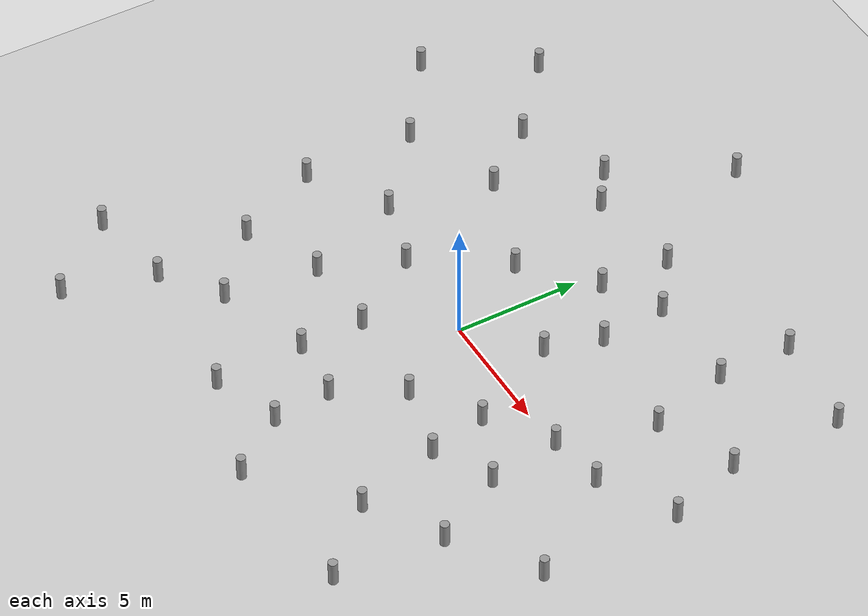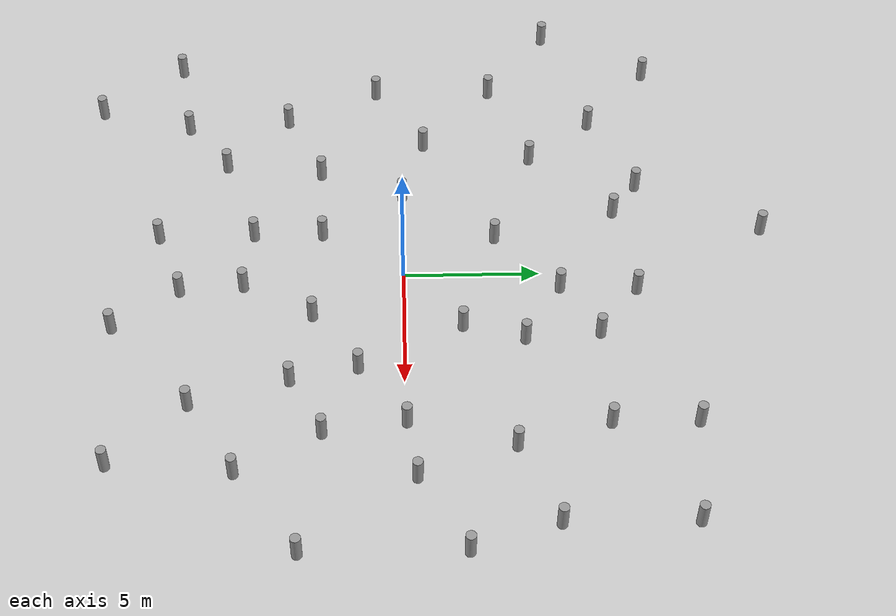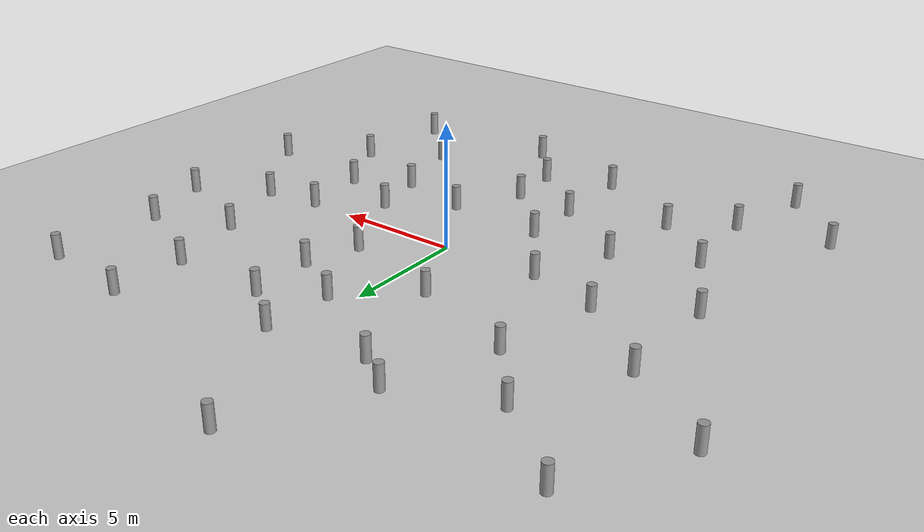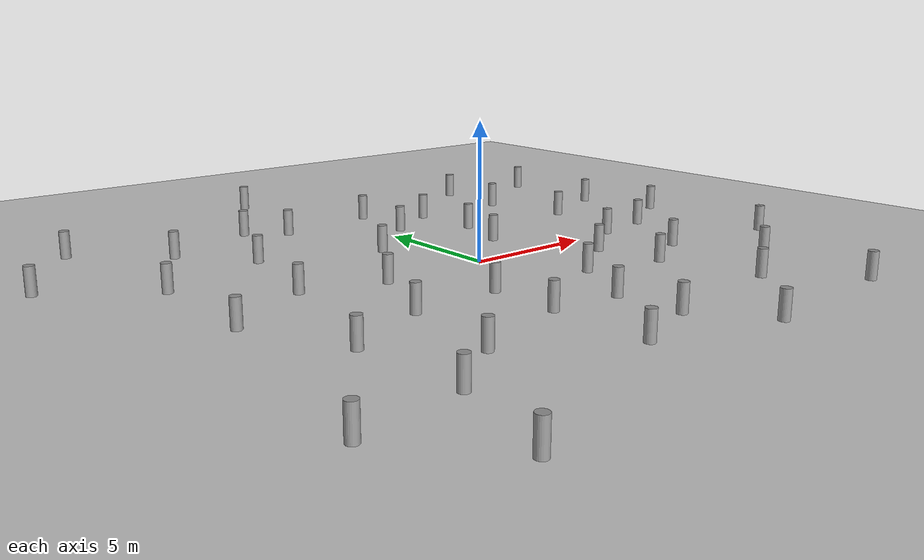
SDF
<sdf version="1.7">
 <world name="default">
  <light name="sun" type="directional">
   <pose>0 0 10 0 -0 0</pose>
   <diffuse>0.8 0.8 0.8 1</diffuse>
   <specular>0.2 0.2 0.2 1</specular>
   <attenuation>
    <range>1000</range>
    <constant>0.9</constant>
    <linear>0.01</linear>
    <quadratic>0.001</quadratic>
   </attenuation>
   <direction>-0.5 0.1 -0.9</direction>
   <spot><inner_angle>0</inner_angle><outer_angle>0</outer_angle><falloff>0</falloff></spot>
  </light>
  <model name="ground_plane">
   <static>1</static>
   <link name="link">
    <collision name="collision">
     <geometry><plane><normal>0 0 1</normal><size>100 100</size></plane></geometry>
     <surface><friction><ode><mu>100</mu><mu2>50</mu2></ode></friction></surface>
    </collision>
    <visual name="visual">
     <cast_shadows>0</cast_shadows>
     <geometry><plane><normal>0 0 1</normal><size>100 100</size></plane></geometry>
     <material>
      <script><uri>file://media/materials/scripts/gazebo.material</uri><name>Gazebo/Grey</name></script>
     </material>
    </visual>
   </link>
  </model>
  <gravity>0 0 -9.8</gravity>
  <magnetic_field>6e-06 2.3e-05 -4.2e-05</magnetic_field>
  <atmosphere type="adiabatic"/>
  <physics type="ode">
   <max_step_size>0.001</max_step_size>
   <real_time_factor>1</real_time_factor>
   <real_time_update_rate>1000</real_time_update_rate>
  </physics>
  <scene><ambient>0.4 0.4 0.4 1</ambient><background>0.7 0.7 0.7 1</background><shadows>1</shadows></scene>
  <spherical_coordinates>
   <surface_model>EARTH_WGS84</surface_model>
   <latitude_deg>0</latitude_deg>
   <longitude_deg>0</longitude_deg>
   <elevation>0</elevation>
   <heading_deg>0</heading_deg>
  </spherical_coordinates>
  <model name="unit_cylinder">
   <pose>2.58628 2.10876 0.499997 0 -0 4e-06</pose>
   <link name="link">
    <inertial>
     <mass>1</mass>
     <inertia><ixx>0.145833</ixx><ixy>0</ixy><ixz>0</ixz><iyy>0.145833</iyy><iyz>0</iyz><izz>0.125</izz></inertia>
    </inertial>
    <collision name="collision">
     <geometry><cylinder><radius>0.180626</radius><length>1</length></cylinder></geometry>
    </collision>
    <visual name="visual">
     <geometry><cylinder><radius>0.180626</radius><length>1</length></cylinder></geometry>
     <material>
      <script><name>Gazebo/Grey</name><uri>file://media/materials/scripts/gazebo.material</uri></script>
     </material>
    </visual>
   </link>
  </model>
  <model name="unit_cylinder_clone">
   <pose>2.02358 -3.2794 0.499991 0 -0 1e-06</pose>
   <link name="link">
    <inertial>
     <mass>1</mass>
     <inertia><ixx>0.145833</ixx><ixy>0</ixy><ixz>0</ixz><iyy>0.145833</iyy><iyz>0</iyz><izz>0.125</izz></inertia>
    </inertial>
    <collision name="collision">
     <geometry><cylinder><radius>0.180626</radius><length>1</length></cylinder></geometry>
    </collision>
    <visual name="visual">
     <geometry><cylinder><radius>0.180626</radius><length>1</length></cylinder></geometry>
     <material>
      <script><name>Gazebo/Grey</name><uri>file://media/materials/scripts/gazebo.material</uri></script>
     </material>
    </visual>
   </link>
  </model>
  <model name="unit_cylinder_clone_0">
   <pose>6.84941 0.056958 0.499997 0 -0 3e-06</pose>
   <link name="link">
    <inertial>
     <mass>1</mass>
     <inertia><ixx>0.145833</ixx><ixy>0</ixy><ixz>0</ixz><iyy>0.145833</iyy><iyz>0</iyz><izz>0.125</izz></inertia>
    </inertial>
    <collision name="collision">
     <geometry><cylinder><radius>0.180626</radius><length>1</length></cylinder></geometry>
    </collision>
    <visual name="visual">
     <geometry><cylinder><radius>0.180626</radius><length>1</length></cylinder></geometry>
     <material>
      <script><name>Gazebo/Grey</name><uri>file://media/materials/scripts/gazebo.material</uri></script>
     </material>
    </visual>
   </link>
  </model>
  <model name="unit_cylinder_clone_1">
   <pose>7.90446 3.75083 0.499997 0 -0 3e-06</pose>
   <link name="link">
    <inertial>
     <mass>1</mass>
     <inertia><ixx>0.145833</ixx><ixy>0</ixy><ixz>0</ixz><iyy>0.145833</iyy><iyz>0</iyz><izz>0.125</izz></inertia>
    </inertial>
    <collision name="collision">
     <geometry><cylinder><radius>0.180626</radius><length>1</length></cylinder></geometry>
    </collision>
    <visual name="visual">
     <geometry><cylinder><radius>0.180626</radius><length>1</length></cylinder></geometry>
     <material>
      <script><name>Gazebo/Grey</name><uri>file://media/materials/scripts/gazebo.material</uri></script>
     </material>
    </visual>
   </link>
  </model>
  <model name="unit_cylinder_clone_2">
   <pose>7 7 0.499991 0 -0 1e-06</pose>
   <link name="link">
    <inertial>
     <mass>1</mass>
     <inertia><ixx>0.145833</ixx><ixy>0</ixy><ixz>0</ixz><iyy>0.145833</iyy><iyz>0</iyz><izz>0.125</izz></inertia>
    </inertial>
    <collision name="collision">
     <geometry><cylinder><radius>0.180626</radius><length>1</length></cylinder></geometry>
    </collision>
    <visual name="visual">
     <geometry><cylinder><radius>0.180626</radius><length>1</length></cylinder></geometry>
     <material>
      <script><name>Gazebo/Grey</name><uri>file://media/materials/scripts/gazebo.material</uri></script>
     </material>
    </visual>
   </link>
  </model>
  <model name="unit_cylinder_clone_3">
   <pose>3 7 0.499997 0 -0 3e-06</pose>
   <link name="link">
    <inertial>
     <mass>1</mass>
     <inertia><ixx>0.145833</ixx><ixy>0</ixy><ixz>0</ixz><iyy>0.145833</iyy><iyz>0</iyz><izz>0.125</izz></inertia>
    </inertial>
    <collision name="collision">
     <geometry><cylinder><radius>0.180626</radius><length>1</length></cylinder></geometry>
    </collision>
    <visual name="visual">
     <geometry><cylinder><radius>0.180626</radius><length>1</length></cylinder></geometry>
     <material>
      <script><name>Gazebo/Grey</name><uri>file://media/materials/scripts/gazebo.material</uri></script>
     </material>
    </visual>
   </link>
  </model>
  <model name="unit_cylinder_clone_4">
   <pose>-3 8 0.499997 0 -0 3e-06</pose>
   <link name="link">
    <inertial>
     <mass>1</mass>
     <inertia><ixx>0.145833</ixx><ixy>0</ixy><ixz>0</ixz><iyy>0.145833</iyy><iyz>0</iyz><izz>0.125</izz></inertia>
    </inertial>
    <collision name="collision">
     <geometry><cylinder><radius>0.180626</radius><length>1</length></cylinder></geometry>
    </collision>
    <visual name="visual">
     <geometry><cylinder><radius>0.180626</radius><length>1</length></cylinder></geometry>
     <material>
      <script><name>Gazebo/Grey</name><uri>file://media/materials/scripts/gazebo.material</uri></script>
     </material>
    </visual>
   </link>
  </model>
  <model name="unit_cylinder_clone_5">
   <pose>-4.41549 9 0.499997 0 -0 3e-06</pose>
   <link name="link">
    <inertial>
     <mass>1</mass>
     <inertia><ixx>0.145833</ixx><ixy>0</ixy><ixz>0</ixz><iyy>0.145833</iyy><iyz>0</iyz><izz>0.125</izz></inertia>
    </inertial>
    <collision name="collision">
     <geometry><cylinder><radius>0.180626</radius><length>1</length></cylinder></geometry>
    </collision>
    <visual name="visual">
     <geometry><cylinder><radius>0.180626</radius><length>1</length></cylinder></geometry>
     <material>
      <script><name>Gazebo/Grey</name><uri>file://media/materials/scripts/gazebo.material</uri></script>
     </material>
    </visual>
   </link>
  </model>
  <model name="unit_cylinder_clone_6">
   <pose>-8 7.47903 0.499993 0 -0 3e-06</pose>
   <link name="link">
    <inertial>
     <mass>1</mass>
     <inertia><ixx>0.145833</ixx><ixy>0</ixy><ixz>0</ixz><iyy>0.145833</iyy><iyz>0</iyz><izz>0.125</izz></inertia>
    </inertial>
    <collision name="collision">
     <geometry><cylinder><radius>0.180626</radius><length>1</length></cylinder></geometry>
    </collision>
    <visual name="visual">
     <geometry><cylinder><radius>0.180626</radius><length>1</length></cylinder></geometry>
     <material>
      <script><name>Gazebo/Grey</name><uri>file://media/materials/scripts/gazebo.material</uri></script>
     </material>
    </visual>
   </link>
  </model>
  <model name="unit_cylinder_clone_7">
   <pose>-6.85958 0.859615 0.499991 0 -0 2e-06</pose>
   <link name="link">
    <inertial>
     <mass>1</mass>
     <inertia><ixx>0.145833</ixx><ixy>0</ixy><ixz>0</ixz><iyy>0.145833</iyy><iyz>0</iyz><izz>0.125</izz></inertia>
    </inertial>
    <collision name="collision">
     <geometry><cylinder><radius>0.180626</radius><length>1</length></cylinder></geometry>
    </collision>
    <visual name="visual">
     <geometry><cylinder><radius>0.180626</radius><length>1</length></cylinder></geometry>
     <material>
      <script><name>Gazebo/Grey</name><uri>file://media/materials/scripts/gazebo.material</uri></script>
     </material>
    </visual>
   </link>
  </model>
  <model name="unit_cylinder_clone_8">
   <pose>-5.75666 -6.79993 0.499991 0 -0 2e-06</pose>
   <link name="link">
    <inertial>
     <mass>1</mass>
     <inertia><ixx>0.145833</ixx><ixy>0</ixy><ixz>0</ixz><iyy>0.145833</iyy><iyz>0</iyz><izz>0.125</izz></inertia>
    </inertial>
    <collision name="collision">
     <geometry><cylinder><radius>0.180626</radius><length>1</length></cylinder></geometry>
    </collision>
    <visual name="visual">
     <geometry><cylinder><radius>0.180626</radius><length>1</length></cylinder></geometry>
     <material>
      <script><name>Gazebo/Grey</name><uri>file://media/materials/scripts/gazebo.material</uri></script>
     </material>
    </visual>
   </link>
  </model>
  <model name="unit_cylinder_clone_9">
   <pose>0.566083 -5.83648 0.499993 0 -0 4e-06</pose>
   <link name="link">
    <inertial>
     <mass>1</mass>
     <inertia><ixx>0.145833</ixx><ixy>0</ixy><ixz>0</ixz><iyy>0.145833</iyy><iyz>0</iyz><izz>0.125</izz></inertia>
    </inertial>
    <collision name="collision">
     <geometry><cylinder><radius>0.180626</radius><length>1</length></cylinder></geometry>
    </collision>
    <visual name="visual">
     <geometry><cylinder><radius>0.180626</radius><length>1</length></cylinder></geometry>
     <material>
      <script><name>Gazebo/Grey</name><uri>file://media/materials/scripts/gazebo.material</uri></script>
     </material>
    </visual>
   </link>
  </model>
  <model name="unit_cylinder_clone_10">
   <pose>6 -7.45435 0.499997 0 -0 4e-06</pose>
   <link name="link">
    <inertial>
     <mass>1</mass>
     <inertia><ixx>0.145833</ixx><ixy>0</ixy><ixz>0</ixz><iyy>0.145833</iyy><iyz>0</iyz><izz>0.125</izz></inertia>
    </inertial>
    <collision name="collision">
     <geometry><cylinder><radius>0.180626</radius><length>1</length></cylinder></geometry>
    </collision>
    <visual name="visual">
     <geometry><cylinder><radius>0.180626</radius><length>1</length></cylinder></geometry>
     <material>
      <script><name>Gazebo/Grey</name><uri>file://media/materials/scripts/gazebo.material</uri></script>
     </material>
    </visual>
   </link>
  </model>
  <model name="unit_cylinder_clone_11">
   <pose>8.47694 -10 0.499997 0 -0 4e-06</pose>
   <link name="link">
    <inertial>
     <mass>1</mass>
     <inertia><ixx>0.145833</ixx><ixy>0</ixy><ixz>0</ixz><iyy>0.145833</iyy><iyz>0</iyz><izz>0.125</izz></inertia>
    </inertial>
    <collision name="collision">
     <geometry><cylinder><radius>0.180626</radius><length>1</length></cylinder></geometry>
    </collision>
    <visual name="visual">
     <geometry><cylinder><radius>0.180626</radius><length>1</length></cylinder></geometry>
     <material>
      <script><name>Gazebo/Grey</name><uri>file://media/materials/scripts/gazebo.material</uri></script>
     </material>
    </visual>
   </link>
  </model>
  <model name="unit_cylinder_clone_12">
   <pose>7.27374 -2.83007 0.499999 0 -0 2e-06</pose>
   <link name="link">
    <inertial>
     <mass>1</mass>
     <inertia><ixx>0.145833</ixx><ixy>0</ixy><ixz>0</ixz><iyy>0.145833</iyy><iyz>0</iyz><izz>0.125</izz></inertia>
    </inertial>
    <collision name="collision">
     <geometry><cylinder><radius>0.180626</radius><length>1</length></cylinder></geometry>
    </collision>
    <visual name="visual">
     <geometry><cylinder><radius>0.180626</radius><length>1</length></cylinder></geometry>
     <material>
      <script><name>Gazebo/Grey</name><uri>file://media/materials/scripts/gazebo.material</uri></script>
     </material>
    </visual>
   </link>
  </model>
  <model name="unit_cylinder_clone_13">
   <pose>-2 -5.56398 0.499999 0 -0 2e-06</pose>
   <link name="link">
    <inertial>
     <mass>1</mass>
     <inertia><ixx>0.145833</ixx><ixy>0</ixy><ixz>0</ixz><iyy>0.145833</iyy><iyz>0</iyz><izz>0.125</izz></inertia>
    </inertial>
    <collision name="collision">
     <geometry><cylinder><radius>0.180626</radius><length>1</length></cylinder></geometry>
    </collision>
    <visual name="visual">
     <geometry><cylinder><radius>0.180626</radius><length>1</length></cylinder></geometry>
     <material>
      <script><name>Gazebo/Grey</name><uri>file://media/materials/scripts/gazebo.material</uri></script>
     </material>
    </visual>
   </link>
  </model>
  <model name="unit_cylinder_clone_14">
   <pose>-11.5476 -9 0.499997 0 -0 3e-06</pose>
   <link name="link">
    <inertial>
     <mass>1</mass>
     <inertia><ixx>0.145833</ixx><ixy>0</ixy><ixz>0</ixz><iyy>0.145833</iyy><iyz>0</iyz><izz>0.125</izz></inertia>
    </inertial>
    <collision name="collision">
     <geometry><cylinder><radius>0.180626</radius><length>1</length></cylinder></geometry>
    </collision>
    <visual name="visual">
     <geometry><cylinder><radius>0.180626</radius><length>1</length></cylinder></geometry>
     <material>
      <script><name>Gazebo/Grey</name><uri>file://media/materials/scripts/gazebo.material</uri></script>
     </material>
    </visual>
   </link>
  </model>
  <model name="unit_cylinder_clone_15">
   <pose>-8 -8.44182 0.499991 0 -0 1e-06</pose>
   <link name="link">
    <inertial>
     <mass>1</mass>
     <inertia><ixx>0.145833</ixx><ixy>0</ixy><ixz>0</ixz><iyy>0.145833</iyy><iyz>0</iyz><izz>0.125</izz></inertia>
    </inertial>
    <collision name="collision">
     <geometry><cylinder><radius>0.180626</radius><length>1</length></cylinder></geometry>
    </collision>
    <visual name="visual">
     <geometry><cylinder><radius>0.180626</radius><length>1</length></cylinder></geometry>
     <material>
      <script><name>Gazebo/Grey</name><uri>file://media/materials/scripts/gazebo.material</uri></script>
     </material>
    </visual>
   </link>
  </model>
  <model name="unit_cylinder_clone_16">
   <pose>-1.95423 -9.12095 0.499999 0 -0 1e-06</pose>
   <link name="link">
    <inertial>
     <mass>1</mass>
     <inertia><ixx>0.145833</ixx><ixy>0</ixy><ixz>0</ixz><iyy>0.145833</iyy><iyz>0</iyz><izz>0.125</izz></inertia>
    </inertial>
    <collision name="collision">
     <geometry><cylinder><radius>0.180626</radius><length>1</length></cylinder></geometry>
    </collision>
    <visual name="visual">
     <geometry><cylinder><radius>0.180626</radius><length>1</length></cylinder></geometry>
     <material>
      <script><name>Gazebo/Grey</name><uri>file://media/materials/scripts/gazebo.material</uri></script>
     </material>
    </visual>
   </link>
  </model>
  <model name="unit_cylinder_clone_17">
   <pose>0.757347 -8.15509 0.499991 0 -0 1e-06</pose>
   <link name="link">
    <inertial>
     <mass>1</mass>
     <inertia><ixx>0.145833</ixx><ixy>0</ixy><ixz>0</ixz><iyy>0.145833</iyy><iyz>0</iyz><izz>0.125</izz></inertia>
    </inertial>
    <collision name="collision">
     <geometry><cylinder><radius>0.180626</radius><length>1</length></cylinder></geometry>
    </collision>
    <visual name="visual">
     <geometry><cylinder><radius>0.180626</radius><length>1</length></cylinder></geometry>
     <material>
      <script><name>Gazebo/Grey</name><uri>file://media/materials/scripts/gazebo.material</uri></script>
     </material>
    </visual>
   </link>
  </model>
  <model name="unit_cylinder_clone_18">
   <pose>-8.3302 -4.50135 0.499999 0 -0 2e-06</pose>
   <link name="link">
    <inertial>
     <mass>1</mass>
     <inertia><ixx>0.145833</ixx><ixy>0</ixy><ixz>0</ixz><iyy>0.145833</iyy><iyz>0</iyz><izz>0.125</izz></inertia>
    </inertial>
    <collision name="collision">
     <geometry><cylinder><radius>0.180626</radius><length>1</length></cylinder></geometry>
    </collision>
    <visual name="visual">
     <geometry><cylinder><radius>0.180626</radius><length>1</length></cylinder></geometry>
     <material>
      <script><name>Gazebo/Grey</name><uri>file://media/materials/scripts/gazebo.material</uri></script>
     </material>
    </visual>
   </link>
  </model>
  <model name="unit_cylinder_clone_19">
   <pose>-10 -1 0.499993 0 -0 4e-06</pose>
   <link name="link">
    <inertial>
     <mass>1</mass>
     <inertia><ixx>0.145833</ixx><ixy>0</ixy><ixz>0</ixz><iyy>0.145833</iyy><iyz>0</iyz><izz>0.125</izz></inertia>
    </inertial>
    <collision name="collision">
     <geometry><cylinder><radius>0.180626</radius><length>1</length></cylinder></geometry>
    </collision>
    <visual name="visual">
     <geometry><cylinder><radius>0.180626</radius><length>1</length></cylinder></geometry>
     <material>
      <script><name>Gazebo/Grey</name><uri>file://media/materials/scripts/gazebo.material</uri></script>
     </material>
    </visual>
   </link>
  </model>
  <model name="unit_cylinder_clone_20">
   <pose>-10 3.57197 0.499991 0 -0 2e-06</pose>
   <link name="link">
    <inertial>
     <mass>1</mass>
     <inertia><ixx>0.145833</ixx><ixy>0</ixy><ixz>0</ixz><iyy>0.145833</iyy><iyz>0</iyz><izz>0.125</izz></inertia>
    </inertial>
    <collision name="collision">
     <geometry><cylinder><radius>0.180626</radius><length>1</length></cylinder></geometry>
    </collision>
    <visual name="visual">
     <geometry><cylinder><radius>0.180626</radius><length>1</length></cylinder></geometry>
     <material>
      <script><name>Gazebo/Grey</name><uri>file://media/materials/scripts/gazebo.material</uri></script>
     </material>
    </visual>
   </link>
  </model>
  <model name="unit_cylinder_clone_21">
   <pose>-1.72715 3.43327 0.499993 0 -0 4e-06</pose>
   <link name="link">
    <inertial>
     <mass>1</mass>
     <inertia><ixx>0.145833</ixx><ixy>0</ixy><ixz>0</ixz><iyy>0.145833</iyy><iyz>0</iyz><izz>0.125</izz></inertia>
    </inertial>
    <collision name="collision">
     <geometry><cylinder><radius>0.180626</radius><length>1</length></cylinder></geometry>
    </collision>
    <visual name="visual">
     <geometry><cylinder><radius>0.180626</radius><length>1</length></cylinder></geometry>
     <material>
      <script><name>Gazebo/Grey</name><uri>file://media/materials/scripts/gazebo.material</uri></script>
     </material>
    </visual>
   </link>
  </model>
  <model name="unit_cylinder_clone_22">
   <pose>0.811547 5.70825 0.499991 0 -0 2e-06</pose>
   <link name="link">
    <inertial>
     <mass>1</mass>
     <inertia><ixx>0.145833</ixx><ixy>0</ixy><ixz>0</ixz><iyy>0.145833</iyy><iyz>0</iyz><izz>0.125</izz></inertia>
    </inertial>
    <collision name="collision">
     <geometry><cylinder><radius>0.180626</radius><length>1</length></cylinder></geometry>
    </collision>
    <visual name="visual">
     <geometry><cylinder><radius>0.180626</radius><length>1</length></cylinder></geometry>
     <material>
      <script><name>Gazebo/Grey</name><uri>file://media/materials/scripts/gazebo.material</uri></script>
     </material>
    </visual>
   </link>
  </model>
  <model name="unit_cylinder_clone_23">
   <pose>3.22938 4.30873 0.499997 0 -0 3e-06</pose>
   <link name="link">
    <inertial>
     <mass>1</mass>
     <inertia><ixx>0.145833</ixx><ixy>0</ixy><ixz>0</ixz><iyy>0.145833</iyy><iyz>0</iyz><izz>0.125</izz></inertia>
    </inertial>
    <collision name="collision">
     <geometry><cylinder><radius>0.180626</radius><length>1</length></cylinder></geometry>
    </collision>
    <visual name="visual">
     <geometry><cylinder><radius>0.180626</radius><length>1</length></cylinder></geometry>
     <material>
      <script><name>Gazebo/Grey</name><uri>file://media/materials/scripts/gazebo.material</uri></script>
     </material>
    </visual>
   </link>
  </model>
  <model name="unit_cylinder_clone_24">
   <pose>-4 0 0.499991 0 -0 2e-06</pose>
   <link name="link">
    <inertial>
     <mass>1</mass>
     <inertia><ixx>0.145833</ixx><ixy>0</ixy><ixz>0</ixz><iyy>0.145833</iyy><iyz>0</iyz><izz>0.125</izz></inertia>
    </inertial>
    <collision name="collision">
     <geometry><cylinder><radius>0.180626</radius><length>1</length></cylinder></geometry>
    </collision>
    <visual name="visual">
     <geometry><cylinder><radius>0.180626</radius><length>1</length></cylinder></geometry>
     <material>
      <script><name>Gazebo/Grey</name><uri>file://media/materials/scripts/gazebo.material</uri></script>
     </material>
    </visual>
   </link>
  </model>
  <model name="unit_cylinder_clone_25">
   <pose>-5.28092 -3.11416 0.499993 0 -0 3e-06</pose>
   <link name="link">
    <inertial>
     <mass>1</mass>
     <inertia><ixx>0.145833</ixx><ixy>0</ixy><ixz>0</ixz><iyy>0.145833</iyy><iyz>0</iyz><izz>0.125</izz></inertia>
    </inertial>
    <collision name="collision">
     <geometry><cylinder><radius>0.180626</radius><length>1</length></cylinder></geometry>
    </collision>
    <visual name="visual">
     <geometry><cylinder><radius>0.180626</radius><length>1</length></cylinder></geometry>
     <material>
      <script><name>Gazebo/Grey</name><uri>file://media/materials/scripts/gazebo.material</uri></script>
     </material>
    </visual>
   </link>
  </model>
  <model name="unit_cylinder_clone_26">
   <pose>-2 -3 0.499999 0 -0 2e-06</pose>
   <link name="link">
    <inertial>
     <mass>1</mass>
     <inertia><ixx>0.145833</ixx><ixy>0</ixy><ixz>0</ixz><iyy>0.145833</iyy><iyz>0</iyz><izz>0.125</izz></inertia>
    </inertial>
    <collision name="collision">
     <geometry><cylinder><radius>0.180626</radius><length>1</length></cylinder></geometry>
    </collision>
    <visual name="visual">
     <geometry><cylinder><radius>0.180626</radius><length>1</length></cylinder></geometry>
     <material>
      <script><name>Gazebo/Grey</name><uri>file://media/materials/scripts/gazebo.material</uri></script>
     </material>
    </visual>
   </link>
  </model>
  <model name="unit_cylinder_clone_27">
   <pose>5 -4 0.499991 0 -0 2e-06</pose>
   <link name="link">
    <inertial>
     <mass>1</mass>
     <inertia><ixx>0.145833</ixx><ixy>0</ixy><ixz>0</ixz><iyy>0.145833</iyy><iyz>0</iyz><izz>0.125</izz></inertia>
    </inertial>
    <collision name="collision">
     <geometry><cylinder><radius>0.180626</radius><length>1</length></cylinder></geometry>
    </collision>
    <visual name="visual">
     <geometry><cylinder><radius>0.180626</radius><length>1</length></cylinder></geometry>
     <material>
      <script><name>Gazebo/Grey</name><uri>file://media/materials/scripts/gazebo.material</uri></script>
     </material>
    </visual>
   </link>
  </model>
  <model name="unit_cylinder_clone_28">
   <pose>8.86293 -5.72646 0.499997 0 -0 4e-06</pose>
   <link name="link">
    <inertial>
     <mass>1</mass>
     <inertia><ixx>0.145833</ixx><ixy>0</ixy><ixz>0</ixz><iyy>0.145833</iyy><iyz>0</iyz><izz>0.125</izz></inertia>
    </inertial>
    <collision name="collision">
     <geometry><cylinder><radius>0.180626</radius><length>1</length></cylinder></geometry>
    </collision>
    <visual name="visual">
     <geometry><cylinder><radius>0.180626</radius><length>1</length></cylinder></geometry>
     <material>
      <script><name>Gazebo/Grey</name><uri>file://media/materials/scripts/gazebo.material</uri></script>
     </material>
    </visual>
   </link>
  </model>
  <model name="unit_cylinder_clone_29">
   <pose>9.1269 0.378795 0.499993 0 -0 4e-06</pose>
   <link name="link">
    <inertial>
     <mass>1</mass>
     <inertia><ixx>0.145833</ixx><ixy>0</ixy><ixz>0</ixz><iyy>0.145833</iyy><iyz>0</iyz><izz>0.125</izz></inertia>
    </inertial>
    <collision name="collision">
     <geometry><cylinder><radius>0.180626</radius><length>1</length></cylinder></geometry>
    </collision>
    <visual name="visual">
     <geometry><cylinder><radius>0.180626</radius><length>1</length></cylinder></geometry>
     <material>
      <script><name>Gazebo/Grey</name><uri>file://media/materials/scripts/gazebo.material</uri></script>
     </material>
    </visual>
   </link>
  </model>
  <model name="unit_cylinder_clone_30">
   <pose>-6 5 0.499999 0 -0 2e-06</pose>
   <link name="link">
    <inertial>
     <mass>1</mass>
     <inertia><ixx>0.145833</ixx><ixy>0</ixy><ixz>0</ixz><iyy>0.145833</iyy><iyz>0</iyz><izz>0.125</izz></inertia>
    </inertial>
    <collision name="collision">
     <geometry><cylinder><radius>0.180626</radius><length>1</length></cylinder></geometry>
    </collision>
    <visual name="visual">
     <geometry><cylinder><radius>0.180626</radius><length>1</length></cylinder></geometry>
     <material>
      <script><name>Gazebo/Grey</name><uri>file://media/materials/scripts/gazebo.material</uri></script>
     </material>
    </visual>
   </link>
  </model>
  <model name="unit_cylinder_clone_31">
   <pose>0.935553 8.50917 0.499999 0 -0 2e-06</pose>
   <link name="link">
    <inertial>
     <mass>1</mass>
     <inertia><ixx>0.145833</ixx><ixy>0</ixy><ixz>0</ixz><iyy>0.145833</iyy><iyz>0</iyz><izz>0.125</izz></inertia>
    </inertial>
    <collision name="collision">
     <geometry><cylinder><radius>0.180626</radius><length>1</length></cylinder></geometry>
    </collision>
    <visual name="visual">
     <geometry><cylinder><radius>0.180626</radius><length>1</length></cylinder></geometry>
     <material>
      <script><name>Gazebo/Grey</name><uri>file://media/materials/scripts/gazebo.material</uri></script>
     </material>
    </visual>
   </link>
  </model>
  <model name="unit_cylinder_clone_32">
   <pose>2.47736 -10.4487 0.499991 0 -0 2e-06</pose>
   <link name="link">
    <inertial>
     <mass>1</mass>
     <inertia><ixx>0.145833</ixx><ixy>0</ixy><ixz>0</ixz><iyy>0.145833</iyy><iyz>0</iyz><izz>0.125</izz></inertia>
    </inertial>
    <collision name="collision">
     <geometry><cylinder><radius>0.180626</radius><length>1</length></cylinder></geometry>
    </collision>
    <visual name="visual">
     <geometry><cylinder><radius>0.180626</radius><length>1</length></cylinder></geometry>
     <material>
      <script><name>Gazebo/Grey</name><uri>file://media/materials/scripts/gazebo.material</uri></script>
     </material>
    </visual>
   </link>
  </model>
  <model name="unit_cylinder_clone_33">
   <pose>-9 -12 0.499997 0 -0 3e-06</pose>
   <link name="link">
    <inertial>
     <mass>1</mass>
     <inertia><ixx>0.145833</ixx><ixy>0</ixy><ixz>0</ixz><iyy>0.145833</iyy><iyz>0</iyz><izz>0.125</izz></inertia>
    </inertial>
    <collision name="collision">
     <geometry><cylinder><radius>0.180626</radius><length>1</length></cylinder></geometry>
    </collision>
    <visual name="visual">
     <geometry><cylinder><radius>0.180626</radius><length>1</length></cylinder></geometry>
     <material>
      <script><name>Gazebo/Grey</name><uri>file://media/materials/scripts/gazebo.material</uri></script>
     </material>
    </visual>
   </link>
  </model>
  <model name="unit_cylinder_clone_34">
   <pose>-13.4057 6 0.499991 0 -0 2e-06</pose>
   <link name="link">
    <inertial>
     <mass>1</mass>
     <inertia><ixx>0.145833</ixx><ixy>0</ixy><ixz>0</ixz><iyy>0.145833</iyy><iyz>0</iyz><izz>0.125</izz></inertia>
    </inertial>
    <collision name="collision">
     <geometry><cylinder><radius>0.180626</radius><length>1</length></cylinder></geometry>
    </collision>
    <visual name="visual">
     <geometry><cylinder><radius>0.180626</radius><length>1</length></cylinder></geometry>
     <material>
      <script><name>Gazebo/Grey</name><uri>file://media/materials/scripts/gazebo.material</uri></script>
     </material>
    </visual>
   </link>
  </model>
  <model name="unit_cylinder_clone_35">
   <pose>-11 10 0.499993 0 -0 4e-06</pose>
   <link name="link">
    <inertial>
     <mass>1</mass>
     <inertia><ixx>0.145833</ixx><ixy>0</ixy><ixz>0</ixz><iyy>0.145833</iyy><iyz>0</iyz><izz>0.125</izz></inertia>
    </inertial>
    <collision name="collision">
     <geometry><cylinder><radius>0.180626</radius><length>1</length></cylinder></geometry>
    </collision>
    <visual name="visual">
     <geometry><cylinder><radius>0.180626</radius><length>1</length></cylinder></geometry>
     <material>
      <script><name>Gazebo/Grey</name><uri>file://media/materials/scripts/gazebo.material</uri></script>
     </material>
    </visual>
   </link>
  </model>
  <model name="unit_cylinder_clone_36">
   <pose>-2 13.4869 0.499999 0 -0 3e-06</pose>
   <link name="link">
    <inertial>
     <mass>1</mass>
     <inertia><ixx>0.145833</ixx><ixy>0</ixy><ixz>0</ixz><iyy>0.145833</iyy><iyz>0</iyz><izz>0.125</izz></inertia>
    </inertial>
    <collision name="collision">
     <geometry><cylinder><radius>0.180626</radius><length>1</length></cylinder></geometry>
    </collision>
    <visual name="visual">
     <geometry><cylinder><radius>0.180626</radius><length>1</length></cylinder></geometry>
     <material>
      <script><name>Gazebo/Grey</name><uri>file://media/materials/scripts/gazebo.material</uri></script>
     </material>
    </visual>
   </link>
  </model>
  <model name="unit_cylinder_clone_37">
   <pose>7 10 0.499991 0 -0 3e-06</pose>
   <link name="link">
    <inertial>
     <mass>1</mass>
     <inertia><ixx>0.145833</ixx><ixy>0</ixy><ixz>0</ixz><iyy>0.145833</iyy><iyz>0</iyz><izz>0.125</izz></inertia>
    </inertial>
    <collision name="collision">
     <geometry><cylinder><radius>0.180626</radius><length>1</length></cylinder></geometry>
    </collision>
    <visual name="visual">
     <geometry><cylinder><radius>0.180626</radius><length>1</length></cylinder></geometry>
     <material>
      <script><name>Gazebo/Grey</name><uri>file://media/materials/scripts/gazebo.material</uri></script>
     </material>
    </visual>
   </link>
  </model>
  <model name="unit_cylinder_clone_38">
   <pose>11 9.49236 0.499991 0 -0 3e-06</pose>
   <link name="link">
    <inertial>
     <mass>1</mass>
     <inertia><ixx>0.145833</ixx><ixy>0</ixy><ixz>0</ixz><iyy>0.145833</iyy><iyz>0</iyz><izz>0.125</izz></inertia>
    </inertial>
    <collision name="collision">
     <geometry><cylinder><radius>0.180626</radius><length>1</length></cylinder></geometry>
    </collision>
    <visual name="visual">
     <geometry><cylinder><radius>0.180626</radius><length>1</length></cylinder></geometry>
     <material>
      <script><name>Gazebo/Grey</name><uri>file://media/materials/scripts/gazebo.material</uri></script>
     </material>
    </visual>
   </link>
  </model>
  <model name="unit_cylinder_clone_39">
   <pose>11 5 0.499993 0 -0 4e-06</pose>
   <link name="link">
    <inertial>
     <mass>1</mass>
     <inertia><ixx>0.145833</ixx><ixy>0</ixy><ixz>0</ixz><iyy>0.145833</iyy><iyz>0</iyz><izz>0.125</izz></inertia>
    </inertial>
    <collision name="collision">
     <geometry><cylinder><radius>0.180626</radius><length>1</length></cylinder></geometry>
    </collision>
    <visual name="visual">
     <geometry><cylinder><radius>0.180626</radius><length>1</length></cylinder></geometry>
     <material>
      <script><name>Gazebo/Grey</name><uri>file://media/materials/scripts/gazebo.material</uri></script>
     </material>
    </visual>
   </link>
  </model>
  <model name="unit_cylinder_clone_40">
   <pose>12 2 0.499991 0 -0 3e-06</pose>
   <link name="link">
    <inertial>
     <mass>1</mass>
     <inertia><ixx>0.145833</ixx><ixy>0</ixy><ixz>0</ixz><iyy>0.145833</iyy><iyz>0</iyz><izz>0.125</izz></inertia>
    </inertial>
    <collision name="collision">
     <geometry><cylinder><radius>0.180626</radius><length>1</length></cylinder></geometry>
    </collision>
    <visual name="visual">
     <geometry><cylinder><radius>0.180626</radius><length>1</length></cylinder></geometry>
     <material>
      <script><name>Gazebo/Grey</name><uri>file://media/materials/scripts/gazebo.material</uri></script>
     </material>
    </visual>
   </link>
  </model>
  <model name="unit_cylinder_clone_41">
   <pose>12 -3.51129 0.499991 0 -0 2e-06</pose>
   <link name="link">
    <inertial>
     <mass>1</mass>
     <inertia><ixx>0.145833</ixx><ixy>0</ixy><ixz>0</ixz><iyy>0.145833</iyy><iyz>0</iyz><izz>0.125</izz></inertia>
    </inertial>
    <collision name="collision">
     <geometry><cylinder><radius>0.180626</radius><length>1</length></cylinder></geometry>
    </collision>
    <visual name="visual">
     <geometry><cylinder><radius>0.180626</radius><length>1</length></cylinder></geometry>
     <material>
      <script><name>Gazebo/Grey</name><uri>file://media/materials/scripts/gazebo.material</uri></script>
     </material>
    </visual>
   </link>
  </model>
  <model name="unit_cylinder_clone_42">
   <pose>4.46966 -1.61752 0.499999 0 -0 2e-06</pose>
   <link name="link">
    <inertial>
     <mass>1</mass>
     <inertia><ixx>0.145833</ixx><ixy>0</ixy><ixz>0</ixz><iyy>0.145833</iyy><iyz>0</iyz><izz>0.125</izz></inertia>
    </inertial>
    <collision name="collision">
     <geometry><cylinder><radius>0.180626</radius><length>1</length></cylinder></geometry>
    </collision>
    <visual name="visual">
     <geometry><cylinder><radius>0.180626</radius><length>1</length></cylinder></geometry>
     <material>
      <script><name>Gazebo/Grey</name><uri>file://media/materials/scripts/gazebo.material</uri></script>
     </material>
    </visual>
   </link>
  </model>
 </world>
</sdf>
